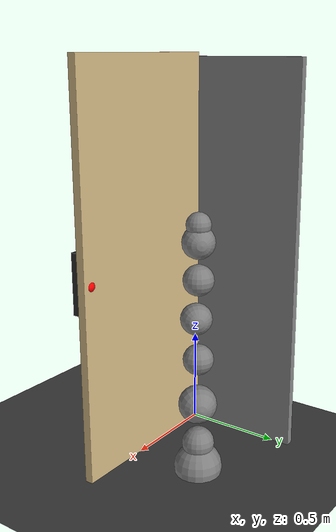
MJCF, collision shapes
<mujoco model="door_iiwa">
  <!-- Door at origin; KUKA iiwa stands in front (−Y) and reaches the handle.
       EE flange welded to handle — no gripper. -->
  <compiler angle="radian" meshdir="kuka_iiwa_14/assets" autolimits="true"/>
  <option timestep="0.002" gravity="0 0 -9.81" integrator="implicitfast"/>

  <visual>
    <headlight diffuse="0.6 0.6 0.6" ambient="0.3 0.3 0.3" specular="0 0 0"/>
    <global azimuth="-140" elevation="-18" offwidth="960" offheight="720"/>
  </visual>

  <default>
    <default class="iiwa">
      <material specular="0.5" shininess="0.25"/>
      <joint axis="0 0 1"/>
      <default class="joint1">
        <joint range="-2.96706 2.96706"/>
        <default class="joint2">
          <joint range="-2.0944 2.0944"/>
        </default>
      </default>
      <default class="joint3">
        <joint range="-3.05433 3.05433"/>
      </default>
      <default class="visual">
        <geom type="mesh" contype="0" conaffinity="0" group="2" material="gray"/>
      </default>
      <default class="collision">
        <!-- Collisions off — weld couples the systems; avoid contact fighting the weld. -->
        <geom group="3" contype="0" conaffinity="0"/>
      </default>
      <site size="0.001" rgba="1 0 0 1" group="4"/>
    </default>
  </default>

  <asset>
    <texture type="skybox" builtin="gradient" rgb1="0.8 0.9 1" rgb2="0.3 0.4 0.5" width="256" height="256"/>
    <texture name="grid" type="2d" builtin="checker" rgb1="0.2 0.2 0.2" rgb2="0.3 0.3 0.3" width="300" height="300"/>
    <material name="grid" texture="grid" texrepeat="5 5" reflectance="0.1"/>

    <material class="iiwa" name="gray" rgba="0.4 0.4 0.4 1"/>
    <material class="iiwa" name="light_gray" rgba="0.6 0.6 0.6 1"/>
    <material class="iiwa" name="black" rgba="0 0 0 1"/>
    <material class="iiwa" name="orange" rgba="1 0.423529 0.0392157 1"/>

    <mesh file="link_0.obj"/>
    <mesh file="link_1.obj"/>
    <mesh file="link_2_orange.obj"/>
    <mesh file="link_2_grey.obj"/>
    <mesh file="link_3.obj"/>
    <mesh file="band.obj"/>
    <mesh file="kuka.obj"/>
    <mesh file="link_4_orange.obj"/>
    <mesh file="link_4_grey.obj"/>
    <mesh file="link_5.obj"/>
    <mesh file="link_6_orange.obj"/>
    <mesh file="link_6_grey.obj"/>
    <mesh file="link_7.obj"/>
  </asset>

  <worldbody>
    <light pos="0.5 -2 3" dir="0 0.4 -1" diffuse="1 1 1"/>
    <geom name="floor" type="plane" size="3 3 0.1" material="grid"/>

    <!-- Wall behind the hinge (visual only). -->
    <geom name="wall" type="box" pos="-0.02 0 1.0" size="0.02 0.6 1.0"
          rgba="0.5 0.5 0.5 1" contype="0" conaffinity="0"/>

    <!-- Door: hinge at world origin, panel in the XZ plane, opens about +Z. -->
    <body name="door" pos="0 0 0">
      <joint name="hinge" type="hinge" pos="0 0 0" axis="0 0 1"
             limited="true" range="-0.17 2.09"
             damping="0.2" frictionloss="3.0"/>
      <geom name="panel" type="box" pos="0.45 0 1.02" size="0.45 0.02 1.0"
            density="600" rgba="0.8 0.7 0.5 1" contype="0" conaffinity="0"/>
      <geom name="handle" type="box" pos="0.85 -0.05 1.0" size="0.02 0.03 0.15"
            density="600" rgba="0.15 0.15 0.15 1" contype="0" conaffinity="0"/>
      <site name="handle" pos="0.85 0 1.0" size="0.03" rgba="1 0 0 1"/>
    </body>

    <body name="base" pos="0.48 0.35 0.0" quat="0.92913257 0 0 -0.36974676" childclass="iiwa">
      <inertial mass="5" pos="-0.1 0 0.07" diaginertia="0.05 0.06 0.03"/>
      <geom class="visual" mesh="link_0"/>
      <geom class="collision" size="0.12" pos="0 0 0.03"/>
      <body name="link1" pos="0 0 0.1575">
        <inertial mass="5.76" pos="0 -0.03 0.12" diaginertia="0.0333 0.033 0.0123"/>
        <joint name="joint1" class="joint1"/>
        <geom class="visual" mesh="link_1"/>
        <geom class="collision" size="0.08" pos="0 0 -0.0005"/>
        <body name="link2" pos="0 0 0.2025" quat="0 0 1 1">
          <inertial mass="6.35" pos="0.0003 0.059 0.042" diaginertia="0.0305 0.0304 0.011" quat="0 0 1 1"/>
          <joint name="joint2" class="joint2"/>
          <geom class="visual" material="orange" mesh="link_2_orange"/>
          <geom class="visual" mesh="link_2_grey"/>
          <geom class="collision" size="0.095" pos="0 0 -0.01"/>
          <body name="link3" pos="0 0.2045 0" quat="0 0 1 1">
            <inertial mass="3.5" pos="0 0.03 0.13" diaginertia="0.025 0.0238 0.0076"/>
            <joint name="joint3" class="joint1"/>
            <geom class="visual" mesh="link_3"/>
            <geom class="visual" material="light_gray" mesh="band"/>
            <geom class="visual" material="black" mesh="kuka"/>
            <geom class="collision" size="0.075" pos="0 0 0.0355"/>
            <body name="link4" pos="0 0 0.2155" quat="1 1 0 0">
              <inertial mass="3.5" pos="0 0.067 0.034" diaginertia="0.017 0.0164 0.006" quat="1 1 0 0"/>
              <joint name="joint4" class="joint2"/>
              <geom class="visual" material="orange" mesh="link_4_orange"/>
              <geom class="visual" mesh="link_4_grey"/>
              <geom class="collision" size="0.078" pos="0 0.01 0.046"/>
              <body name="link5" pos="0 0.1845 0" quat="0 0 1 1">
                <inertial mass="3.5" pos="0.0001 0.021 0.076" diaginertia="0.01 0.0087 0.00449"/>
                <joint name="joint5" class="joint1"/>
                <geom class="visual" mesh="link_5"/>
                <geom class="visual" material="light_gray" mesh="band"/>
                <geom class="visual" material="black" mesh="kuka"/>
                <geom class="collision" size="0.075" pos="0 0 0.0335"/>
                <body name="link6" pos="0 0 0.2155" quat="1 1 0 0">
                  <inertial mass="1.8" pos="0 0.0006 0.0004" diaginertia="0.0049 0.0047 0.0036" quat="1 1 0 0"/>
                  <joint name="joint6" class="joint2"/>
                  <geom class="visual" material="orange" mesh="link_6_orange"/>
                  <geom class="visual" mesh="link_6_grey"/>
                  <geom class="collision" size="0.08"/>
                  <body name="link7" pos="0 0.081 0" quat="0 0 1 1">
                    <inertial mass="1.2" pos="0 0 0.02" diaginertia="0.001 0.001 0.001"/>
                    <joint name="joint7" class="joint3"/>
                    <geom class="visual" mesh="link_7"/>
                    <geom class="collision" size="0.06" pos="0 0 0.001"/>
                    <!-- wrist F/T sensor cross-section: between joint7 and flange -->
                    <site name="wrist_ft" pos="0 0 0.01" size="0.006" rgba="0 1 0 0.8" group="4"/>
                    <site pos="0 0 0.045" name="attachment_site"/>
                  </body>
                </body>
              </body>
            </body>
          </body>
        </body>
      </body>
    </body>

    <!-- Camera: looks across the scene showing robot beside door. -->
    <camera name="view" pos="-0.5 -1.5 2.5" xyaxes="0.97 0.24 0 -0.14 0.56 0.82"/>

    <camera name="flowbot_view" pos="1.3 -2.0 2.0" xyaxes="0.9328 0.3605 0 -0.1407 0.3640 0.9206"/>

    <body name="rgbd_camera_mount" pos="-0.9 -1.6 1.3"
          xyaxes="0.7643 -0.6449 0 0.0855 0.1013 0.9912">
      <include file="rgbd_camera.xml"/>
    </body>
  </worldbody>

  <equality>
    <!-- Rigid weld: flange (link7) ↔ door at the grasp keyframe. -->
    <weld name="ee_to_handle" body1="link7" body2="door"
          relpose="0.89395617 -0.58412111 -0.71793229 0.70535506 -0.24070924 -0.60473762 0.28075918"
          solref="0.001 1" solimp="0.99 0.99 0.001 0.5 2"/>
  </equality>

  <actuator>
    <motor name="actuator1" joint="joint1" ctrlrange="-100 100"/>
    <motor name="actuator2" joint="joint2" ctrlrange="-100 100"/>
    <motor name="actuator3" joint="joint3" ctrlrange="-100 100"/>
    <motor name="actuator4" joint="joint4" ctrlrange="-100 100"/>
    <motor name="actuator5" joint="joint5" ctrlrange="-100 100"/>
    <motor name="actuator6" joint="joint6" ctrlrange="-100 100"/>
    <motor name="actuator7" joint="joint7" ctrlrange="-100 100"/>
  </actuator>

  <!-- qpos: hinge, j1..j7 — EE at handle, arm clear of the panel. -->
  <keyframe>
    <key name="grasp"
         qpos="0 -0.000127 0.095125 -0.000032 -0.944458 0.000003 0.377911 0.000000"
         ctrl="0 0 0 0 0 0 0"/>
  </keyframe>
</mujoco>

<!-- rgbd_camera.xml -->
<mujocoinclude>
  <camera name="rgbd" fovy="58" resolution="640 480"/>
</mujocoinclude>
